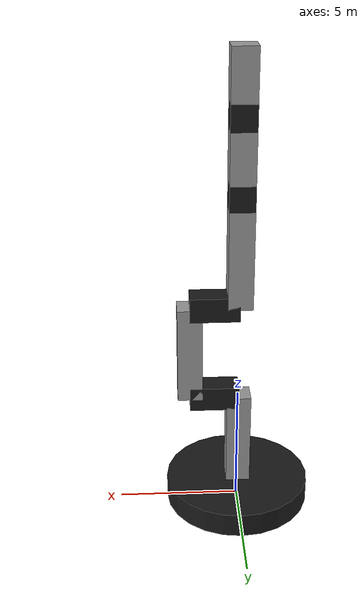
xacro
<?xml version="1.0"?>
<robot name="robot" xmlns:xacro="http://www.ros.org/wiki/xacro">

    <xacro:arg name="cmd_interface" default="position" />

    <xacro:include filename="robot_main.xacro" />
    <xacro:include filename="robot_utils.xacro" />
    <xacro:include filename="robot.ros2_control.xacro" />
    <xacro:include filename="robot_gazebo.xacro" />

    <xacro:robot_ros2_control name="robot" cmd_interface="$(arg cmd_interface)" />

</robot>

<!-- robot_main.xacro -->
<robot xmlns:xacro="http://www.ros.org/wiki/xacro">

  <xacro:include filename="robot_inertia.xacro" />

  <link name="base_link">

    <!-- Visual -->
    <visual>
      <origin xyz="0 0 0.5" rpy="0 0 0"/>
      <material name="black" />
      <geometry>
        <cylinder radius="3" length="1"/>
      </geometry>
    </visual>

    <!-- Collision -->
    <collision>
      <origin xyz="0 0 0.5" rpy="0 0 0"/>
      <geometry>
        <cylinder radius="3" length="1"/>
      </geometry>
    </collision>

    <xacro:cylinder_inertia m="100.0" r="3" h="1"/>

  </link>

  <link name="joint1_link">

    <!-- Visual -->
    <visual>
      <origin xyz="0 0 2" rpy="0 0 0"/>
      <material name="grey" />
      <geometry>
        <box size="1 1 4" />
      </geometry>

    </visual>

    <!-- Collision -->
    <collision>
      <origin xyz="0 0 2" rpy="0 0 0"/>
      <geometry>
        <box size="1 1 4" />
      </geometry>
    </collision>

    <xacro:box_inertia m="2.0" x="1" y="1" z="4"/>

  </link>

   <joint name="joint1" type="revolute">
        <parent link="base_link" />
        <child link="joint1_link" />
        <origin xyz="0 0 1" rpy="0 0 0" />
        <axis xyz="0 0 1" />
        <limit effort="1000.0" velocity="1.0" lower="-3.14" upper="3.14" />
    </joint>

    <link name="joint2_link">

    <!-- Visual -->
    <visual>
      <origin xyz="1 0 0" rpy="0 1.57 0"/>
      <material name="black" />
      <geometry>
        <box size="1 1 2" />
      </geometry>
    </visual>

    <!-- Collision -->
    <collision>
      <origin xyz="1 0 0" rpy="0 1.57 0"/>
      <geometry>
        <box size="1 1 2" />
      </geometry>
    </collision>

    <xacro:box_inertia m="2.0" x="1" y="1" z="2"/>

  </link>

   <joint name="joint2" type="fixed">
        <parent link="joint1_link" />
        <child link="joint2_link" />
        <origin xyz="0 0 4" rpy="0 0 0" />
  </joint>

  <link name="joint3_link">

    <!-- Visual -->
    <visual>
      <origin xyz="0 0 2" rpy="0 1.57 0"/>
      <material name="grey" />
      <geometry>
        <box size="4 1 1" />
      </geometry>
    </visual>

    <!-- Collision -->
    <collision>
      <origin xyz="0 0 2" rpy="0 1.57 0"/>
      <geometry>
        <box size="4 1 1" />
      </geometry>
    </collision>

    <xacro:box_inertia m="2.0" x="4" y="1" z="1"/>

  </link>

   <joint name="joint3" type="revolute">
        <parent link="joint2_link" />
        <child link="joint3_link" />
        <origin xyz="2 0 0" rpy="0 0 0" />
        <axis xyz="1 0 0" />
        <limit effort="1000.0" velocity="1.0" lower="-3.14" upper="3.14" />
  </joint>

  <link name="joint4_link">

    <!-- Visual -->
    <visual>
      <origin xyz="-1 0 0" rpy="0 1.57 0"/>
      <material name="black" />
      <geometry>
        <box size="1 1 2" />
      </geometry>
    </visual>

    <!-- Collision -->
    <collision>
      <origin xyz="-1 0 0" rpy="0 1.57 0"/>
      <geometry>
        <box size="1 1 2" />
      </geometry>
    </collision>

    <xacro:box_inertia m="2.0" x="1" y="1" z="2"/>

  </link>

   <joint name="joint4" type="fixed">
        <parent link="joint3_link" />
        <child link="joint4_link" />
        <origin xyz="0 0 4" rpy="0 0 0" />
  </joint>

  <link name="joint5_link">

    <!-- Visual -->
    <visual>
      <origin xyz="0 0 2" rpy="0 1.57 0"/>
      <material name="grey" />
      <geometry>
        <box size="4 1 1" />
      </geometry>
    </visual>

    <!-- Collision -->
    <collision>
      <origin xyz="0 0 2" rpy="0 1.57 0"/>
      <geometry>
        <box size="4 1 1" />
      </geometry>
    </collision>

    <xacro:box_inertia m="2.0" x="4" y="1" z="1"/>

  </link>

   <joint name="joint5" type="revolute">
        <parent link="joint4_link" />
        <child link="joint5_link" />
        <origin xyz="-2 0 0" rpy="0 0 0" />
        <axis xyz="1 0 0" />
        <limit effort="1000.0" velocity="1.0" lower="-3.14" upper="3.14" />
  </joint>

  <link name="joint6_link">

    <!-- Visual -->
    <visual>
      <origin xyz="0 0 0.5" rpy="0 1.57 0"/>
      <material name="black" />
      <geometry>
        <box size="1 1 1" />
      </geometry>
    </visual>

    <!-- Collision -->
    <collision>
      <origin xyz="0 0 0.5" rpy="0 1.57 0"/>
      <geometry>
        <box size="1 1 1" />
      </geometry>
    </collision>

    <xacro:box_inertia m="2.0" x="1" y="1" z="1"/>

  </link>

   <joint name="joint6" type="revolute">
        <parent link="joint5_link" />
        <child link="joint6_link" />
        <origin xyz="0 0 4" rpy="0 0 0" />
        <axis xyz="0 0 1" />
        <limit effort="1000.0" velocity="1.0" lower="-3.14" upper="3.14" />
  </joint>

   <link name="joint7_link">

    <!-- Visual -->
    <visual>
      <origin xyz="0 0 1" rpy="0 1.57 0"/>
      <material name="grey" />
      <geometry>
        <box size="2 1 1" />
      </geometry>
    </visual>

    <!-- Collision -->
    <collision>
      <origin xyz="0 0 1" rpy="0 1.57 0"/>
      <geometry>
        <box size="2 1 1" />
      </geometry>
    </collision>

    <xacro:box_inertia m="2.0" x="2" y="1" z="1"/>

  </link>

   <joint name="joint7" type="revolute">
        <parent link="joint6_link" />
        <child link="joint7_link" />
        <origin xyz="0 0 1" rpy="0 0 0" />
        <axis xyz="1 0 0" />
        <limit effort="1000.0" velocity="1.0" lower="-3.14" upper="3.14" />
  </joint>

  <link name="joint8_link">

    <!-- Visual -->
    <visual>
      <origin xyz="0 0 0.5" rpy="0 1.57 0"/>
      <material name="black" />
      <geometry>
        <box size="1 1 1" />
      </geometry>
    </visual>

    <!-- Collision -->
    <collision>
      <origin xyz="0 0 0.5" rpy="0 1.57 0"/>
      <geometry>
        <box size="1 1 1" />
      </geometry>
    </collision>

    <xacro:box_inertia m="2.0" x="1" y="1" z="1"/>

  </link>

   <joint name="joint8" type="revolute">
        <parent link="joint7_link" />
        <child link="joint8_link" />
        <origin xyz="0 0 2" rpy="0 0 0" />
        <axis xyz="0 0 1" />
        <limit effort="1000.0" velocity="1.0" lower="-3.14" upper="3.14" />
  </joint>

  <link name="joint9_link">

   <visual>
      <origin xyz="0 0 1" rpy="0 1.57 0"/>
      <material name="grey" />
      <geometry>
        <box size="2 1 1" />
      </geometry>
    </visual>

    <!-- Collision -->
    <collision>
      <origin xyz="0 0 1" rpy="0 1.57 0"/>
      <geometry>
        <box size="2 1 1" />
      </geometry>
    </collision>

    <xacro:box_inertia m="2.0" x="2" y="1" z="1"/>

  </link>

  <joint name="joint9" type="revolute">
        <parent link="joint8_link" />
        <child link="joint9_link" />
        <origin xyz="0 0 1" rpy="0 0 0" />
        <axis xyz="1 0 0" />
        <limit effort="1000.0" velocity="1.0" lower="-3.14" upper="3.14" />
  </joint>

</robot>

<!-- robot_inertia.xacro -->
<robot xmlns:xacro="http://www.ros.org/wiki/xacro">

  <xacro:macro name="cylinder_inertia" params="m r h">
    <inertial>
      <origin xyz="0 0 ${h/2}" rpy="0 0 0"/>
      <mass value="${m}"/>
      <inertia ixx="${(m/12) * (3*r*r + h*h)}" ixy="0" ixz="0"
               iyy="${(m/12) * (3*r*r + h*h)}" iyz="0"
               izz="${(m/2) * (r*r)}"/>
    </inertial>
  </xacro:macro>

  <xacro:macro name="box_inertia" params="m x y z">
    <inertial>
      <origin xyz="0 0 ${z/2}" rpy="0 0 0"/>
      <mass value="${m}"/>
      <inertia ixx="${(m/12) * (y*y + z*z)}" ixy="0" ixz="0"
               iyy="${(m/12) * (x*x + z*z)}" iyz="0"
               izz="${(m/12) * (x*x + y*y)}"/>
    </inertial>
  </xacro:macro>

</robot>

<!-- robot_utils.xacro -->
<robot xmlns:xacro="http://www.ros.org/wiki/xacro">

    <material name="black">
        <color rgba="0.1 0.1 0.1 1" />
    </material>

    <material name="grey">
        <color rgba="0.6 0.6 0.6 1" />
    </material>

</robot>
